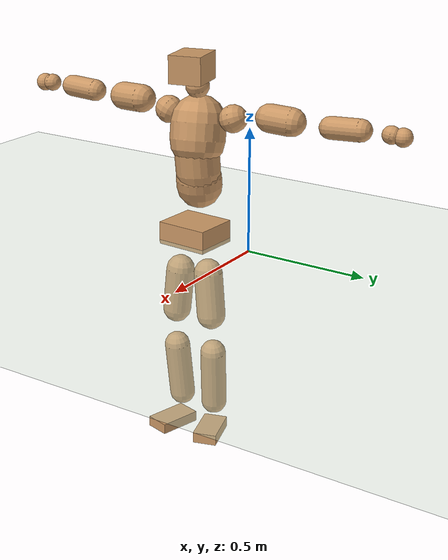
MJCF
<mujoco model="humanoid">
  <compiler coordinate="local" angle="radian"/>
  <default>
    <joint damping="0.0" armature="0.01" stiffness="0.0" limited="true"/>
    <geom conaffinity="1" condim="3" contype="7" margin="0.001" rgba="0.8 0.6 .4 1"/>
  </default>
  <asset>
    <texture type="skybox" builtin="gradient" rgb1=".4 .5 .6" rgb2="0 0 0" width="100" height="100"/>
    <texture builtin="flat" height="1278" mark="cross" markrgb="1 1 1" name="texgeom" random="0.01" rgb1="0.8 0.6 0.4" rgb2="0.8 0.6 0.4" type="cube" width="127"/>
    <texture builtin="checker" height="100" name="texplane" rgb1="0 0 0" rgb2="0.8 0.8 0.8" type="2d" width="100"/>
    <material name="MatPlane" reflectance="0.5" shininess="1" specular="1" texrepeat="60 60" texture="texplane"/>
    <material name="geom" texture="texgeom" texuniform="true"/>
  </asset>
  <worldbody>
    <light cutoff="100" diffuse="1 1 1" dir="-0 0 -1.3" directional="true" exponent="1" pos="0 0 1.3" specular=".1 .1 .1"/>
    <geom conaffinity="1" condim="3" name="floor" pos="0 0 0" rgba="0.8 0.9 0.8 1" size="100 100 .2" type="plane" material="MatPlane"/>
    <body name="Pelvis" pos="-0.0011 -0.2618 0.0348">
      <freejoint name="Pelvis"/>
      <geom type="box" contype="1" conaffinity="1" density="5359.375068" pos="-0.0095 0.0005 -0.0074" size="0.0932 0.1083 0.046" quat="0.9996 0.0000 0.0000 -0.0272" name="Pelvis"/>
      <body name="L_Hip" pos="-0.0086 0.058 -0.0832">
        <joint name="L_Hip_x" type="hinge" pos="0 0 0" axis="1 0 0" stiffness="1600" damping="160" armature="0.02" range="-180.0000 180.0000"/>
        <joint name="L_Hip_y" type="hinge" pos="0 0 0" axis="0 1 0" stiffness="1600" damping="160" armature="0.02" range="-180.0000 180.0000"/>
        <joint name="L_Hip_z" type="hinge" pos="0 0 0" axis="0 0 1" stiffness="1600" damping="160" armature="0.02" range="-180.0000 180.0000"/>
        <geom type="capsule" contype="1" conaffinity="1" density="2040.816327" size="0.0583" fromto="0.0026 0.0090 -0.0878 0.0081 0.0276 -0.2683" name="L_Hip"/>
        <body name="L_Knee" pos="0.0107 0.0366 -0.3561">
          <joint name="L_Knee_x" type="hinge" pos="0 0 0" axis="1 0 0" stiffness="1600" damping="160" armature="0.02" range="-180.0000 180.0000"/>
          <joint name="L_Knee_y" type="hinge" pos="0 0 0" axis="0 1 0" stiffness="1600" damping="160" armature="0.02" range="-180.0000 180.0000"/>
          <joint name="L_Knee_z" type="hinge" pos="0 0 0" axis="0 0 1" stiffness="1600" damping="160" armature="0.02" range="-180.0000 180.0000"/>
          <geom type="capsule" contype="1" conaffinity="1" density="1234.567901" size="0.0528" fromto="-0.0077 -0.0032 -0.0824 -0.0299 -0.0124 -0.3207" name="L_Knee"/>
          <body name="L_Ankle" pos="-0.0376 -0.0156 -0.4031">
            <joint name="L_Ankle_x" type="hinge" pos="0 0 0" axis="1 0 0" stiffness="1600" damping="160" armature="0.02" range="-180.0000 180.0000"/>
            <joint name="L_Ankle_y" type="hinge" pos="0 0 0" axis="0 1 0" stiffness="1600" damping="160" armature="0.02" range="-180.0000 180.0000"/>
            <joint name="L_Ankle_z" type="hinge" pos="0 0 0" axis="0 0 1" stiffness="1600" damping="160" armature="0.02" range="-180.0000 180.0000"/>
            <geom type="box" contype="1" conaffinity="1" density="999.99997" pos="0.0602 0.0184 -0.0287" size="0.0869 0.0492 0.0224" quat="0.9890 0.0000 0.0000 0.1479" name="L_Ankle"/>
            <body name="L_Toe" pos="0.1203 0.0368 -0.0575">
              <joint name="L_Toe_x" type="hinge" pos="0 0 0" axis="1 0 0" stiffness="1000" damping="100" armature="0.02" range="-180.0000 180.0000"/>
              <joint name="L_Toe_y" type="hinge" pos="0 0 0" axis="0 1 0" stiffness="1000" damping="100" armature="0.02" range="-180.0000 180.0000"/>
              <joint name="L_Toe_z" type="hinge" pos="0 0 0" axis="0 0 1" stiffness="1000" damping="100" armature="0.02" range="-180.0000 180.0000"/>
              <geom type="box" contype="1" conaffinity="1" density="8473911.078024" pos="0.0000 0.0000 0.0279" size="0.001 0.0024 0.0011" quat="0.9882 0.0000 0.0000 0.1530" name="L_Toe"/>
            </body>
          </body>
        </body>
      </body>
      <body name="R_Hip" pos="-0.0039 -0.0593 -0.0926">
        <joint name="R_Hip_x" type="hinge" pos="0 0 0" axis="1 0 0" stiffness="1600" damping="160" armature="0.02" range="-180.0000 180.0000"/>
        <joint name="R_Hip_y" type="hinge" pos="0 0 0" axis="0 1 0" stiffness="1600" damping="160" armature="0.02" range="-180.0000 180.0000"/>
        <joint name="R_Hip_z" type="hinge" pos="0 0 0" axis="0 0 1" stiffness="1600" damping="160" armature="0.02" range="-180.0000 180.0000"/>
        <geom type="capsule" contype="1" conaffinity="1" density="2040.816327" size="0.058" fromto="-0.0001 -0.0094 -0.0875 -0.0004 -0.0291 -0.2698" name="R_Hip"/>
        <body name="R_Knee" pos="-0.0005 -0.0386 -0.3573">
          <joint name="R_Knee_x" type="hinge" pos="0 0 0" axis="1 0 0" stiffness="1600" damping="160" armature="0.02" range="-180.0000 180.0000"/>
          <joint name="R_Knee_y" type="hinge" pos="0 0 0" axis="0 1 0" stiffness="1600" damping="160" armature="0.02" range="-180.0000 180.0000"/>
          <joint name="R_Knee_z" type="hinge" pos="0 0 0" axis="0 0 1" stiffness="1600" damping="160" armature="0.02" range="-180.0000 180.0000"/>
          <geom type="capsule" contype="1" conaffinity="1" density="1234.567901" size="0.0531" fromto="-0.0070 0.0040 -0.0827 -0.0266 0.0151 -0.3145" name="R_Knee"/>
          <body name="R_Ankle" pos="-0.0336 0.019 -0.3972">
            <joint name="R_Ankle_x" type="hinge" pos="0 0 0" axis="1 0 0" stiffness="1600" damping="160" armature="0.02" range="-180.0000 180.0000"/>
            <joint name="R_Ankle_y" type="hinge" pos="0 0 0" axis="0 1 0" stiffness="1600" damping="160" armature="0.02" range="-180.0000 180.0000"/>
            <joint name="R_Ankle_z" type="hinge" pos="0 0 0" axis="0 0 1" stiffness="1600" damping="160" armature="0.02" range="-180.0000 180.0000"/>
            <geom type="box" contype="1" conaffinity="1" density="1000.000014" pos="0.0638 -0.0165 -0.0302" size="0.0892 0.0509 0.0217" quat="0.9920 0.0000 0.0000 -0.1260" name="R_Ankle"/>
            <body name="R_Toe" pos="0.1277 -0.033 -0.0603">
              <joint name="R_Toe_x" type="hinge" pos="0 0 0" axis="1 0 0" stiffness="1000" damping="100" armature="0.02" range="-180.0000 180.0000"/>
              <joint name="R_Toe_y" type="hinge" pos="0 0 0" axis="0 1 0" stiffness="1000" damping="100" armature="0.02" range="-180.0000 180.0000"/>
              <joint name="R_Toe_z" type="hinge" pos="0 0 0" axis="0 0 1" stiffness="1000" damping="100" armature="0.02" range="-180.0000 180.0000"/>
              <geom type="box" contype="1" conaffinity="1" density="8084835.428473" pos="0.0000 0.0000 0.0303" size="0.0012 0.0025 0.0011" quat="0.9931 0.0000 0.0000 -0.1170" name="R_Toe"/>
            </body>
          </body>
        </body>
      </body>
      <body name="Torso" pos="-0.0444 0.0044 0.1314">
        <joint name="Torso_x" type="hinge" pos="0 0 0" axis="1 0 0" stiffness="2000" damping="200" armature="0.02" range="-180.0000 180.0000"/>
        <joint name="Torso_y" type="hinge" pos="0 0 0" axis="0 1 0" stiffness="2000" damping="200" armature="0.02" range="-180.0000 180.0000"/>
        <joint name="Torso_z" type="hinge" pos="0 0 0" axis="0 0 1" stiffness="2000" damping="200" armature="0.02" range="-180.0000 180.0000"/>
        <geom type="capsule" contype="1" conaffinity="1" density="2040.816327" size="0.0922" fromto="0.0171 0.0038 0.0905 0.0102 0.0022 0.0540" name="Torso"/>
        <body name="Spine" pos="0.0273 0.006 0.1445">
          <joint name="Spine_x" type="hinge" pos="0 0 0" axis="1 0 0" stiffness="2000" damping="200" armature="0.02" range="-180.0000 180.0000"/>
          <joint name="Spine_y" type="hinge" pos="0 0 0" axis="0 1 0" stiffness="2000" damping="200" armature="0.02" range="-180.0000 180.0000"/>
          <joint name="Spine_z" type="hinge" pos="0 0 0" axis="0 0 1" stiffness="2000" damping="200" armature="0.02" range="-180.0000 180.0000"/>
          <geom type="capsule" contype="1" conaffinity="1" density="2040.816327" size="0.0897" fromto="0.0061 -0.0041 0.0894 -0.0022 0.0014 -0.0316" name="Spine"/>
          <body name="Chest" pos="0.004 -0.0026 0.0578">
            <joint name="Chest_x" type="hinge" pos="0 0 0" axis="1 0 0" stiffness="2000" damping="200" armature="0.02" range="-180.0000 180.0000"/>
            <joint name="Chest_y" type="hinge" pos="0 0 0" axis="0 1 0" stiffness="2000" damping="200" armature="0.02" range="-180.0000 180.0000"/>
            <joint name="Chest_z" type="hinge" pos="0 0 0" axis="0 0 1" stiffness="2000" damping="200" armature="0.02" range="-180.0000 180.0000"/>
            <geom type="capsule" contype="1" conaffinity="1" density="2040.816327" size="0.1108" fromto="-0.0233 -0.0061 0.1082 -0.0086 -0.0022 0.0399" name="Chest"/>
            <body name="Neck" pos="-0.0429 -0.0119 0.2131">
              <joint name="Neck_x" type="hinge" pos="0 0 0" axis="1 0 0" stiffness="1000" damping="100" armature="0.02" range="-180.0000 180.0000"/>
              <joint name="Neck_y" type="hinge" pos="0 0 0" axis="0 1 0" stiffness="1000" damping="100" armature="0.02" range="-180.0000 180.0000"/>
              <joint name="Neck_z" type="hinge" pos="0 0 0" axis="0 0 1" stiffness="1000" damping="100" armature="0.02" range="-180.0000 180.0000"/>
              <geom type="capsule" contype="1" conaffinity="1" density="1000" size="0.0478" fromto="0.0255 0.0051 0.0405 0.0265 0.0053 0.0422" name="Neck"/>
              <body name="Head" pos="0.052 0.0104 0.0826">
                <joint name="Head_x" type="hinge" pos="0 0 0" axis="1 0 0" stiffness="1000" damping="100" armature="0.02" range="-180.0000 180.0000"/>
                <joint name="Head_y" type="hinge" pos="0 0 0" axis="0 1 0" stiffness="1000" damping="100" armature="0.02" range="-180.0000 180.0000"/>
                <joint name="Head_z" type="hinge" pos="0 0 0" axis="0 0 1" stiffness="1000" damping="100" armature="0.02" range="-180.0000 180.0000"/>
                <geom type="box" contype="1" conaffinity="1" density="2249.999877" pos="0.0270 0.0062 0.0423" size="0.0817 0.0654 0.0549" quat="0.9937 0.0000 0.0000 0.1125" name="Head"/>
              </body>
            </body>
            <body name="L_Thorax" pos="-0.0252 0.0793 0.1164">
              <joint name="L_Thorax_x" type="hinge" pos="0 0 0" axis="1 0 0" stiffness="1000" damping="100" armature="0.02" range="-180.0000 180.0000"/>
              <joint name="L_Thorax_y" type="hinge" pos="0 0 0" axis="0 1 0" stiffness="1000" damping="100" armature="0.02" range="-180.0000 180.0000"/>
              <joint name="L_Thorax_z" type="hinge" pos="0 0 0" axis="0 0 1" stiffness="1000" damping="100" armature="0.02" range="-180.0000 180.0000"/>
              <geom type="capsule" contype="1" conaffinity="1" density="1000" size="0.0555" fromto="-0.0120 0.0654 0.0233 -0.0124 0.0672 0.0240" name="L_Thorax"/>
              <body name="L_Shoulder" pos="-0.0244 0.1326 0.0473">
                <joint name="L_Shoulder_x" type="hinge" pos="0 0 0" axis="1 0 0" stiffness="1000" damping="100" armature="0.02" range="-720.0000 720.0000"/>
                <joint name="L_Shoulder_y" type="hinge" pos="0 0 0" axis="0 1 0" stiffness="1000" damping="100" armature="0.02" range="-720.0000 720.0000"/>
                <joint name="L_Shoulder_z" type="hinge" pos="0 0 0" axis="0 0 1" stiffness="1000" damping="100" armature="0.02" range="-720.0000 720.0000"/>
                <geom type="capsule" contype="1" conaffinity="1" density="1000" size="0.0561" fromto="-0.0078 0.0857 -0.0043 -0.0160 0.1762 -0.0088" name="L_Shoulder"/>
                <body name="L_Elbow" pos="-0.0238 0.2619 -0.0131">
                  <joint name="L_Elbow_x" type="hinge" pos="0 0 0" axis="1 0 0" stiffness="1000" damping="100" armature="0.02" range="-720.0000 720.0000"/>
                  <joint name="L_Elbow_y" type="hinge" pos="0 0 0" axis="0 1 0" stiffness="1000" damping="100" armature="0.02" range="-720.0000 720.0000"/>
                  <joint name="L_Elbow_z" type="hinge" pos="0 0 0" axis="0 0 1" stiffness="1000" damping="100" armature="0.02" range="-720.0000 720.0000"/>
                  <geom type="capsule" contype="1" conaffinity="1" density="1000" size="0.0436" fromto="-0.0023 0.0735 0.0037 -0.0061 0.1957 0.0100" name="L_Elbow"/>
                  <body name="L_Wrist" pos="-0.0084 0.2692 0.0137">
                    <joint name="L_Wrist_x" type="hinge" pos="0 0 0" axis="1 0 0" stiffness="600" damping="60" armature="0.02" range="-180.0000 180.0000"/>
                    <joint name="L_Wrist_y" type="hinge" pos="0 0 0" axis="0 1 0" stiffness="600" damping="60" armature="0.02" range="-180.0000 180.0000"/>
                    <joint name="L_Wrist_z" type="hinge" pos="0 0 0" axis="0 0 1" stiffness="600" damping="60" armature="0.02" range="-180.0000 180.0000"/>
                    <geom type="capsule" contype="1" conaffinity="1" density="1000" size="0.0347" fromto="-0.0076 0.0426 -0.0050 -0.0079 0.0445 -0.0053" name="L_Wrist"/>
                    <body name="L_Hand" pos="-0.0155 0.0871 -0.0103">
                      <joint name="L_Hand_x" type="hinge" pos="0 0 0" axis="1 0 0" stiffness="600" damping="60" armature="0.02" range="-180.0000 180.0000"/>
                      <joint name="L_Hand_y" type="hinge" pos="0 0 0" axis="0 1 0" stiffness="600" damping="60" armature="0.02" range="-180.0000 180.0000"/>
                      <joint name="L_Hand_z" type="hinge" pos="0 0 0" axis="0 0 1" stiffness="600" damping="60" armature="0.02" range="-180.0000 180.0000"/>
                      <geom type="sphere" contype="1" conaffinity="1" density="1000" size="0.0358" pos="0.0000 0.0000 0.0000" name="L_Hand"/>
                    </body>
                  </body>
                </body>
              </body>
            </body>
            <body name="R_Thorax" pos="-0.0276 -0.0923 0.1147">
              <joint name="R_Thorax_x" type="hinge" pos="0 0 0" axis="1 0 0" stiffness="1000" damping="100" armature="0.02" range="-180.0000 180.0000"/>
              <joint name="R_Thorax_y" type="hinge" pos="0 0 0" axis="0 1 0" stiffness="1000" damping="100" armature="0.02" range="-180.0000 180.0000"/>
              <joint name="R_Thorax_z" type="hinge" pos="0 0 0" axis="0 0 1" stiffness="1000" damping="100" armature="0.02" range="-180.0000 180.0000"/>
              <geom type="capsule" contype="1" conaffinity="1" density="1000" size="0.0555" fromto="-0.0061 -0.0609 0.0236 -0.0062 -0.0627 0.0244" name="R_Thorax"/>
              <body name="R_Shoulder" pos="-0.0123 -0.1236 0.048">
                <joint name="R_Shoulder_x" type="hinge" pos="0 0 0" axis="1 0 0" stiffness="1000" damping="100" armature="0.02" range="-720.0000 720.0000"/>
                <joint name="R_Shoulder_y" type="hinge" pos="0 0 0" axis="0 1 0" stiffness="1000" damping="100" armature="0.02" range="-720.0000 720.0000"/>
                <joint name="R_Shoulder_z" type="hinge" pos="0 0 0" axis="0 0 1" stiffness="1000" damping="100" armature="0.02" range="-720.0000 720.0000"/>
                <geom type="capsule" contype="1" conaffinity="1" density="1000" size="0.0571" fromto="-0.0096 -0.0866 -0.0027 -0.0204 -0.1844 -0.0058" name="R_Shoulder"/>
                <body name="R_Elbow" pos="-0.0299 -0.271 -0.0086">
                  <joint name="R_Elbow_x" type="hinge" pos="0 0 0" axis="1 0 0" stiffness="1000" damping="100" armature="0.02" range="-720.0000 720.0000"/>
                  <joint name="R_Elbow_y" type="hinge" pos="0 0 0" axis="0 1 0" stiffness="1000" damping="100" armature="0.02" range="-720.0000 720.0000"/>
                  <joint name="R_Elbow_z" type="hinge" pos="0 0 0" axis="0 0 1" stiffness="1000" damping="100" armature="0.02" range="-720.0000 720.0000"/>
                  <geom type="capsule" contype="1" conaffinity="1" density="1000" size="0.0447" fromto="-0.0017 -0.0746 0.0025 -0.0045 -0.1989 0.0068" name="R_Elbow"/>
                  <body name="R_Wrist" pos="-0.0062 -0.2736 0.0093">
                    <joint name="R_Wrist_x" type="hinge" pos="0 0 0" axis="1 0 0" stiffness="600" damping="60" armature="0.02" range="-180.0000 180.0000"/>
                    <joint name="R_Wrist_y" type="hinge" pos="0 0 0" axis="0 1 0" stiffness="600" damping="60" armature="0.02" range="-180.0000 180.0000"/>
                    <joint name="R_Wrist_z" type="hinge" pos="0 0 0" axis="0 0 1" stiffness="600" damping="60" armature="0.02" range="-180.0000 180.0000"/>
                    <geom type="capsule" contype="1" conaffinity="1" density="1000" size="0.0361" fromto="-0.0050 -0.0446 -0.0043 -0.0052 -0.0465 -0.0045" name="R_Wrist"/>
                    <body name="R_Hand" pos="-0.0103 -0.0911 -0.0089">
                      <joint name="R_Hand_x" type="hinge" pos="0 0 0" axis="1 0 0" stiffness="600" damping="60" armature="0.02" range="-180.0000 180.0000"/>
                      <joint name="R_Hand_y" type="hinge" pos="0 0 0" axis="0 1 0" stiffness="600" damping="60" armature="0.02" range="-180.0000 180.0000"/>
                      <joint name="R_Hand_z" type="hinge" pos="0 0 0" axis="0 0 1" stiffness="600" damping="60" armature="0.02" range="-180.0000 180.0000"/>
                      <geom type="sphere" contype="1" conaffinity="1" density="1000" size="0.0371" pos="0.0000 0.0000 0.0000" name="R_Hand"/>
                    </body>
                  </body>
                </body>
              </body>
            </body>
          </body>
        </body>
      </body>
    </body>
  </worldbody>
  <actuator>
    <motor name="L_Hip_x" joint="L_Hip_x" gear="500"/>
    <motor name="L_Hip_y" joint="L_Hip_y" gear="500"/>
    <motor name="L_Hip_z" joint="L_Hip_z" gear="500"/>
    <motor name="L_Knee_x" joint="L_Knee_x" gear="500"/>
    <motor name="L_Knee_y" joint="L_Knee_y" gear="500"/>
    <motor name="L_Knee_z" joint="L_Knee_z" gear="500"/>
    <motor name="L_Ankle_x" joint="L_Ankle_x" gear="500"/>
    <motor name="L_Ankle_y" joint="L_Ankle_y" gear="500"/>
    <motor name="L_Ankle_z" joint="L_Ankle_z" gear="500"/>
    <motor name="L_Toe_x" joint="L_Toe_x" gear="500"/>
    <motor name="L_Toe_y" joint="L_Toe_y" gear="500"/>
    <motor name="L_Toe_z" joint="L_Toe_z" gear="500"/>
    <motor name="R_Hip_x" joint="R_Hip_x" gear="500"/>
    <motor name="R_Hip_y" joint="R_Hip_y" gear="500"/>
    <motor name="R_Hip_z" joint="R_Hip_z" gear="500"/>
    <motor name="R_Knee_x" joint="R_Knee_x" gear="500"/>
    <motor name="R_Knee_y" joint="R_Knee_y" gear="500"/>
    <motor name="R_Knee_z" joint="R_Knee_z" gear="500"/>
    <motor name="R_Ankle_x" joint="R_Ankle_x" gear="500"/>
    <motor name="R_Ankle_y" joint="R_Ankle_y" gear="500"/>
    <motor name="R_Ankle_z" joint="R_Ankle_z" gear="500"/>
    <motor name="R_Toe_x" joint="R_Toe_x" gear="500"/>
    <motor name="R_Toe_y" joint="R_Toe_y" gear="500"/>
    <motor name="R_Toe_z" joint="R_Toe_z" gear="500"/>
    <motor name="Torso_x" joint="Torso_x" gear="500"/>
    <motor name="Torso_y" joint="Torso_y" gear="500"/>
    <motor name="Torso_z" joint="Torso_z" gear="500"/>
    <motor name="Spine_x" joint="Spine_x" gear="500"/>
    <motor name="Spine_y" joint="Spine_y" gear="500"/>
    <motor name="Spine_z" joint="Spine_z" gear="500"/>
    <motor name="Chest_x" joint="Chest_x" gear="500"/>
    <motor name="Chest_y" joint="Chest_y" gear="500"/>
    <motor name="Chest_z" joint="Chest_z" gear="500"/>
    <motor name="Neck_x" joint="Neck_x" gear="500"/>
    <motor name="Neck_y" joint="Neck_y" gear="500"/>
    <motor name="Neck_z" joint="Neck_z" gear="500"/>
    <motor name="Head_x" joint="Head_x" gear="500"/>
    <motor name="Head_y" joint="Head_y" gear="500"/>
    <motor name="Head_z" joint="Head_z" gear="500"/>
    <motor name="L_Thorax_x" joint="L_Thorax_x" gear="500"/>
    <motor name="L_Thorax_y" joint="L_Thorax_y" gear="500"/>
    <motor name="L_Thorax_z" joint="L_Thorax_z" gear="500"/>
    <motor name="L_Shoulder_x" joint="L_Shoulder_x" gear="500"/>
    <motor name="L_Shoulder_y" joint="L_Shoulder_y" gear="500"/>
    <motor name="L_Shoulder_z" joint="L_Shoulder_z" gear="500"/>
    <motor name="L_Elbow_x" joint="L_Elbow_x" gear="500"/>
    <motor name="L_Elbow_y" joint="L_Elbow_y" gear="500"/>
    <motor name="L_Elbow_z" joint="L_Elbow_z" gear="500"/>
    <motor name="L_Wrist_x" joint="L_Wrist_x" gear="500"/>
    <motor name="L_Wrist_y" joint="L_Wrist_y" gear="500"/>
    <motor name="L_Wrist_z" joint="L_Wrist_z" gear="500"/>
    <motor name="L_Hand_x" joint="L_Hand_x" gear="500"/>
    <motor name="L_Hand_y" joint="L_Hand_y" gear="500"/>
    <motor name="L_Hand_z" joint="L_Hand_z" gear="500"/>
    <motor name="R_Thorax_x" joint="R_Thorax_x" gear="500"/>
    <motor name="R_Thorax_y" joint="R_Thorax_y" gear="500"/>
    <motor name="R_Thorax_z" joint="R_Thorax_z" gear="500"/>
    <motor name="R_Shoulder_x" joint="R_Shoulder_x" gear="500"/>
    <motor name="R_Shoulder_y" joint="R_Shoulder_y" gear="500"/>
    <motor name="R_Shoulder_z" joint="R_Shoulder_z" gear="500"/>
    <motor name="R_Elbow_x" joint="R_Elbow_x" gear="500"/>
    <motor name="R_Elbow_y" joint="R_Elbow_y" gear="500"/>
    <motor name="R_Elbow_z" joint="R_Elbow_z" gear="500"/>
    <motor name="R_Wrist_x" joint="R_Wrist_x" gear="500"/>
    <motor name="R_Wrist_y" joint="R_Wrist_y" gear="500"/>
    <motor name="R_Wrist_z" joint="R_Wrist_z" gear="500"/>
    <motor name="R_Hand_x" joint="R_Hand_x" gear="500"/>
    <motor name="R_Hand_y" joint="R_Hand_y" gear="500"/>
    <motor name="R_Hand_z" joint="R_Hand_z" gear="500"/>
  </actuator>
  <contact>
    <exclude body1="Torso" body2="Chest"/>
    <exclude body1="Head" body2="Chest"/>
    <exclude body1="R_Knee" body2="R_Toe"/>
    <exclude body1="R_Knee" body2="L_Ankle"/>
    <exclude body1="R_Knee" body2="L_Toe"/>
    <exclude body1="L_Knee" body2="L_Toe"/>
    <exclude body1="L_Knee" body2="R_Ankle"/>
    <exclude body1="L_Knee" body2="R_Toe"/>
    <exclude body1="L_Shoulder" body2="Chest"/>
    <exclude body1="R_Shoulder" body2="Chest"/>
  </contact>
  <sensor/>
  <size njmax="700" nconmax="700"/>
</mujoco>
